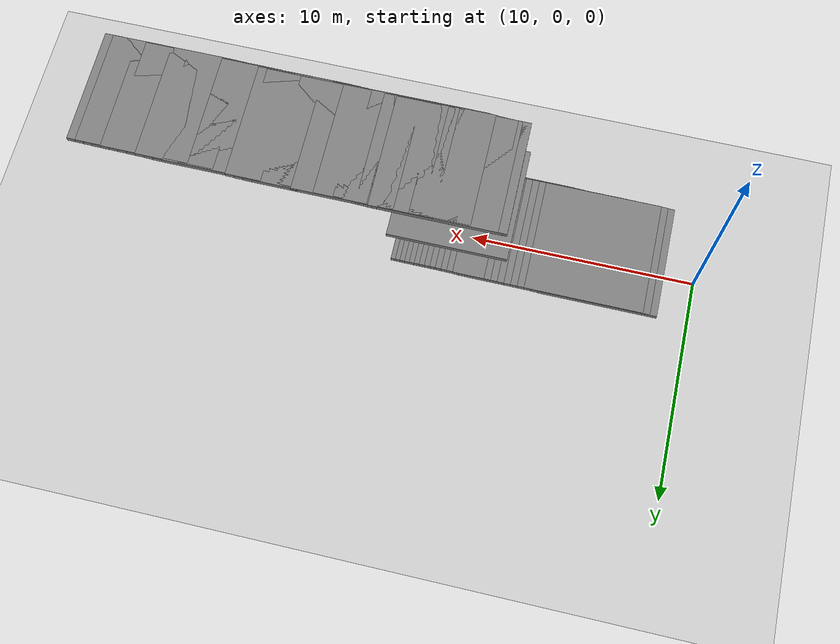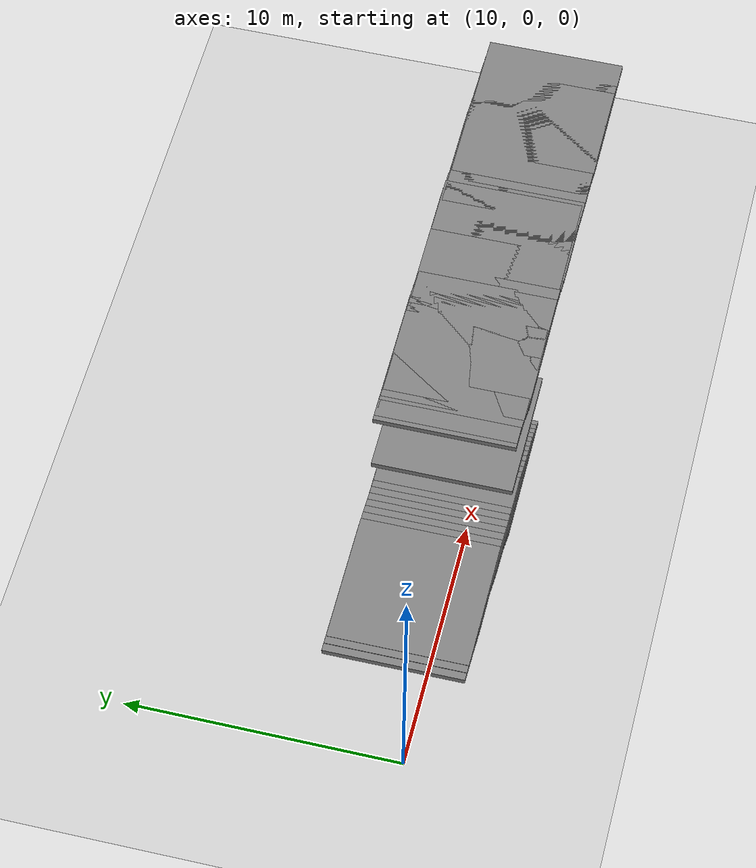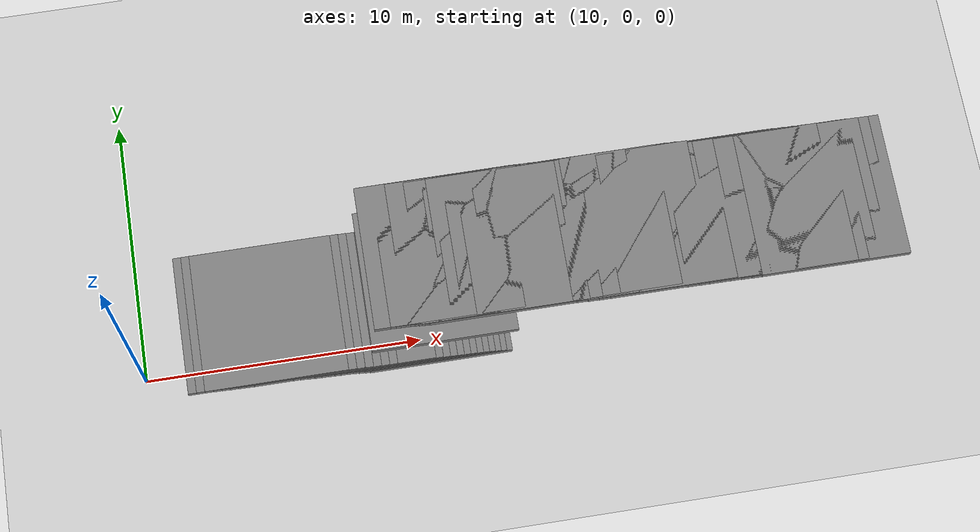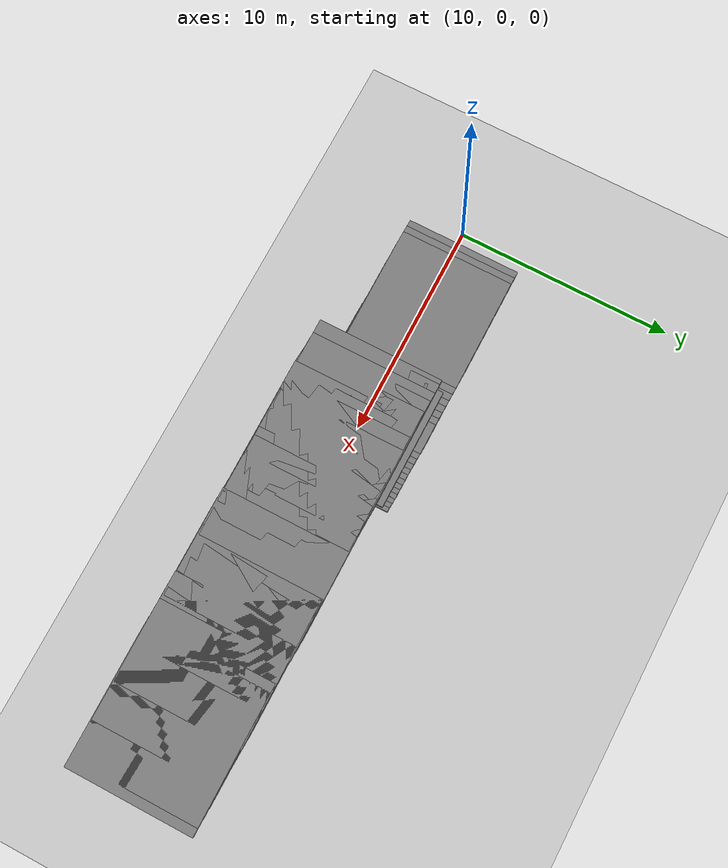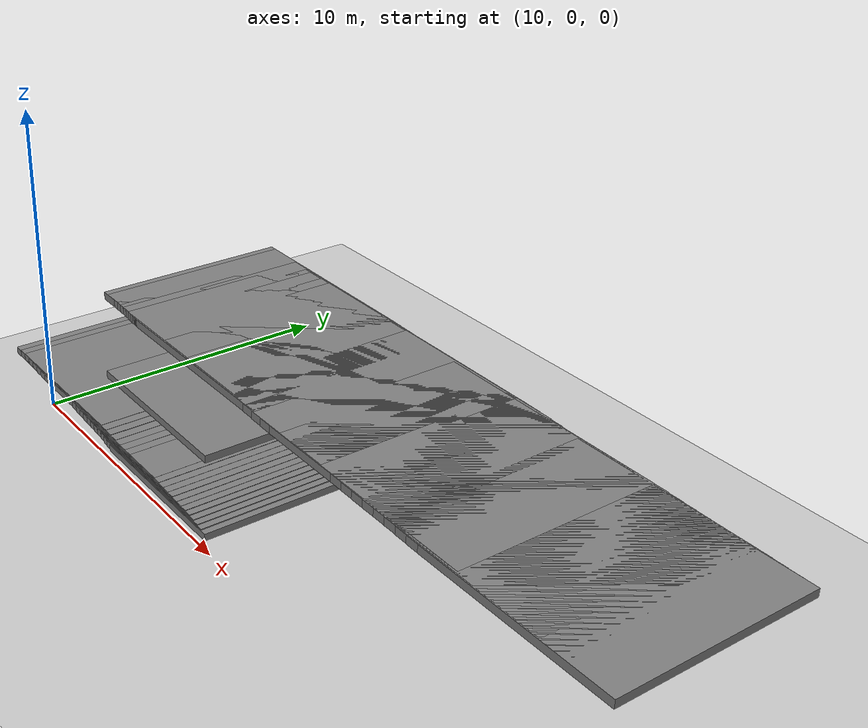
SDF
<sdf version="1.6">
 <world name="default">
  <include><uri>model://sun</uri></include>
  <include><uri>model://ground_plane</uri></include>
  <model name="road_segment_647">
   <static>true</static>
   <link name="link">
    <visual name="visual">
     <geometry><box><size>5.0 5.0 0.2</size></box></geometry>
     <material><ambient>0.5 0.5 0.5 1</ambient><diffuse>0.5 0.5 0.5 1</diffuse></material>
     <pose>33.78429300124273 0.5025741603383109 7.753381617790991 0 0 0</pose>
    </visual>
    <collision name="collision">
     <geometry><box><size>5.0 5.0 0.2</size></box></geometry>
     <pose>33.78429300124273 0.5025741603383109 7.753381617790991 0 0 0</pose>
    </collision>
   </link>
  </model>
  <model name="road_segment_648">
   <static>true</static>
   <link name="link">
    <visual name="visual">
     <geometry><box><size>5.0 5.0 0.2</size></box></geometry>
     <material><ambient>0.5 0.5 0.5 1</ambient><diffuse>0.5 0.5 0.5 1</diffuse></material>
     <pose>33.439639722446174 0.5058429353631491 7.753381617790991 0 0 0</pose>
    </visual>
    <collision name="collision">
     <geometry><box><size>5.0 5.0 0.2</size></box></geometry>
     <pose>33.439639722446174 0.5058429353631491 7.753381617790991 0 0 0</pose>
    </collision>
   </link>
  </model>
  <model name="road_segment_649">
   <static>true</static>
   <link name="link">
    <visual name="visual">
     <geometry><box><size>5.0 5.0 0.2</size></box></geometry>
     <material><ambient>0.5 0.5 0.5 1</ambient><diffuse>0.5 0.5 0.5 1</diffuse></material>
     <pose>33.09222921741963 0.5146277682444427 7.753381617790991 0 0 0</pose>
    </visual>
    <collision name="collision">
     <geometry><box><size>5.0 5.0 0.2</size></box></geometry>
     <pose>33.09222921741963 0.5146277682444427 7.753381617790991 0 0 0</pose>
    </collision>
   </link>
  </model>
  <model name="road_segment_650">
   <static>true</static>
   <link name="link">
    <visual name="visual">
     <geometry><box><size>5.0 5.0 0.2</size></box></geometry>
     <material><ambient>0.5 0.5 0.5 1</ambient><diffuse>0.5 0.5 0.5 1</diffuse></material>
     <pose>32.739648913191466 0.525046988643599 7.753381617790991 0 0 0</pose>
    </visual>
    <collision name="collision">
     <geometry><box><size>5.0 5.0 0.2</size></box></geometry>
     <pose>32.739648913191466 0.525046988643599 7.753381617790991 0 0 0</pose>
    </collision>
   </link>
  </model>
  <model name="road_segment_651">
   <static>true</static>
   <link name="link">
    <visual name="visual">
     <geometry><box><size>5.0 5.0 0.2</size></box></geometry>
     <material><ambient>0.5 0.5 0.5 1</ambient><diffuse>0.5 0.5 0.5 1</diffuse></material>
     <pose>32.38419649831388 0.5299501511826706 7.753381617790991 0 0 0</pose>
    </visual>
    <collision name="collision">
     <geometry><box><size>5.0 5.0 0.2</size></box></geometry>
     <pose>32.38419649831388 0.5299501511826706 7.753381617790991 0 0 0</pose>
    </collision>
   </link>
  </model>
  <model name="road_segment_652">
   <static>true</static>
   <link name="link">
    <visual name="visual">
     <geometry><box><size>5.0 5.0 0.2</size></box></geometry>
     <material><ambient>0.5 0.5 0.5 1</ambient><diffuse>0.5 0.5 0.5 1</diffuse></material>
     <pose>32.02610174164208 0.5307673449379728 7.753381617790991 0 0 0</pose>
    </visual>
    <collision name="collision">
     <geometry><box><size>5.0 5.0 0.2</size></box></geometry>
     <pose>32.02610174164208 0.5307673449379728 7.753381617790991 0 0 0</pose>
    </collision>
   </link>
  </model>
  <model name="road_segment_653">
   <static>true</static>
   <link name="link">
    <visual name="visual">
     <geometry><box><size>5.0 5.0 0.2</size></box></geometry>
     <material><ambient>0.5 0.5 0.5 1</ambient><diffuse>0.5 0.5 0.5 1</diffuse></material>
     <pose>31.66662837185529 0.5336275230869744 7.753381617790991 0 0 0</pose>
    </visual>
    <collision name="collision">
     <geometry><box><size>5.0 5.0 0.2</size></box></geometry>
     <pose>31.66662837185529 0.5336275230869744 7.753381617790991 0 0 0</pose>
    </collision>
   </link>
  </model>
  <model name="road_segment_654">
   <static>true</static>
   <link name="link">
    <visual name="visual">
     <geometry><box><size>5.0 5.0 0.2</size></box></geometry>
     <material><ambient>0.5 0.5 0.5 1</ambient><diffuse>0.5 0.5 0.5 1</diffuse></material>
     <pose>31.304972197968404 0.5397564762608139 7.753381617790991 0 0 0</pose>
    </visual>
    <collision name="collision">
     <geometry><box><size>5.0 5.0 0.2</size></box></geometry>
     <pose>31.304972197968404 0.5397564762608139 7.753381617790991 0 0 0</pose>
    </collision>
   </link>
  </model>
  <model name="road_segment_655">
   <static>true</static>
   <link name="link">
    <visual name="visual">
     <geometry><box><size>5.0 5.0 0.2</size></box></geometry>
     <material><ambient>0.5 0.5 0.5 1</ambient><diffuse>0.5 0.5 0.5 1</diffuse></material>
     <pose>30.939524838011216 0.5479284138283527 7.753381617790991 0 0 0</pose>
    </visual>
    <collision name="collision">
     <geometry><box><size>5.0 5.0 0.2</size></box></geometry>
     <pose>30.939524838011216 0.5479284138283527 7.753381617790991 0 0 0</pose>
    </collision>
   </link>
  </model>
  <model name="road_segment_656">
   <static>true</static>
   <link name="link">
    <visual name="visual">
     <geometry><box><size>5.0 5.0 0.2</size></box></geometry>
     <material><ambient>0.5 0.5 0.5 1</ambient><diffuse>0.5 0.5 0.5 1</diffuse></material>
     <pose>30.572928633794255 0.5597777233001952 7.753381617790991 0 0 0</pose>
    </visual>
    <collision name="collision">
     <geometry><box><size>5.0 5.0 0.2</size></box></geometry>
     <pose>30.572928633794255 0.5597777233001952 7.753381617790991 0 0 0</pose>
    </collision>
   </link>
  </model>
  <model name="road_segment_657">
   <static>true</static>
   <link name="link">
    <visual name="visual">
     <geometry><box><size>5.0 5.0 0.2</size></box></geometry>
     <material><ambient>0.5 0.5 0.5 1</ambient><diffuse>0.5 0.5 0.5 1</diffuse></material>
     <pose>30.205298469736974 0.5728528234068055 7.753381617790991 0 0 0</pose>
    </visual>
    <collision name="collision">
     <geometry><box><size>5.0 5.0 0.2</size></box></geometry>
     <pose>30.205298469736974 0.5728528234068055 7.753381617790991 0 0 0</pose>
    </collision>
   </link>
  </model>
  <model name="road_segment_658">
   <static>true</static>
   <link name="link">
    <visual name="visual">
     <geometry><box><size>5.0 5.0 0.2</size></box></geometry>
     <material><ambient>0.5 0.5 0.5 1</ambient><diffuse>0.5 0.5 0.5 1</diffuse></material>
     <pose>29.835140848304924 0.5777559859458772 7.753381617790991 0 0 0</pose>
    </visual>
    <collision name="collision">
     <geometry><box><size>5.0 5.0 0.2</size></box></geometry>
     <pose>29.835140848304924 0.5777559859458772 7.753381617790991 0 0 0</pose>
    </collision>
   </link>
  </model>
  <model name="road_segment_659">
   <static>true</static>
   <link name="link">
    <visual name="visual">
     <geometry><box><size>5.0 5.0 0.2</size></box></geometry>
     <material><ambient>0.5 0.5 0.5 1</ambient><diffuse>0.5 0.5 0.5 1</diffuse></material>
     <pose>29.46280042278911 0.5722399280894217 7.753381617790991 0 0 0</pose>
    </visual>
    <collision name="collision">
     <geometry><box><size>5.0 5.0 0.2</size></box></geometry>
     <pose>29.46280042278911 0.5722399280894217 7.753381617790991 0 0 0</pose>
    </collision>
   </link>
  </model>
  <model name="road_segment_660">
   <static>true</static>
   <link name="link">
    <visual name="visual">
     <geometry><box><size>5.0 5.0 0.2</size></box></geometry>
     <material><ambient>0.5 0.5 0.5 1</ambient><diffuse>0.5 0.5 0.5 1</diffuse></material>
     <pose>29.089196268561423 0.558960529544893 7.753381617790991 0 0 0</pose>
    </visual>
    <collision name="collision">
     <geometry><box><size>5.0 5.0 0.2</size></box></geometry>
     <pose>29.089196268561423 0.558960529544893 7.753381617790991 0 0 0</pose>
    </collision>
   </link>
  </model>
  <model name="road_segment_661">
   <static>true</static>
   <link name="link">
    <visual name="visual">
     <geometry><box><size>5.0 5.0 0.2</size></box></geometry>
     <material><ambient>0.5 0.5 0.5 1</ambient><diffuse>0.5 0.5 0.5 1</diffuse></material>
     <pose>28.714902807768084 0.5489499060252023 7.753381617790991 0 0 0</pose>
    </visual>
    <collision name="collision">
     <geometry><box><size>5.0 5.0 0.2</size></box></geometry>
     <pose>28.714902807768084 0.5489499060252023 7.753381617790991 0 0 0</pose>
    </collision>
   </link>
  </model>
  <model name="road_segment_662">
   <static>true</static>
   <link name="link">
    <visual name="visual">
     <geometry><box><size>5.0 5.0 0.2</size></box></geometry>
     <material><ambient>0.5 0.5 0.5 1</ambient><diffuse>0.5 0.5 0.5 1</diffuse></material>
     <pose>28.341873075686607 0.5516057857362855 7.753381617790991 0 0 0</pose>
    </visual>
    <collision name="collision">
     <geometry><box><size>5.0 5.0 0.2</size></box></geometry>
     <pose>28.341873075686607 0.5516057857362855 7.753381617790991 0 0 0</pose>
    </collision>
   </link>
  </model>
  <model name="road_segment_663">
   <static>true</static>
   <link name="link">
    <visual name="visual">
     <geometry><box><size>5.0 5.0 0.2</size></box></geometry>
     <material><ambient>0.5 0.5 0.5 1</ambient><diffuse>0.5 0.5 0.5 1</diffuse></material>
     <pose>27.970107072300678 0.5630464983286624 7.753381617790991 0 0 0</pose>
    </visual>
    <collision name="collision">
     <geometry><box><size>5.0 5.0 0.2</size></box></geometry>
     <pose>27.970107072300678 0.5630464983286624 7.753381617790991 0 0 0</pose>
    </collision>
   </link>
  </model>
  <model name="road_segment_664">
   <static>true</static>
   <link name="link">
    <visual name="visual">
     <geometry><box><size>5.0 5.0 0.2</size></box></geometry>
     <material><ambient>0.5 0.5 0.5 1</ambient><diffuse>0.5 0.5 0.5 1</diffuse></material>
     <pose>27.598570837753645 0.5793903734601109 7.753381617790991 0 0 0</pose>
    </visual>
    <collision name="collision">
     <geometry><box><size>5.0 5.0 0.2</size></box></geometry>
     <pose>27.598570837753645 0.5793903734601109 7.753381617790991 0 0 0</pose>
    </collision>
   </link>
  </model>
  <model name="road_segment_665">
   <static>true</static>
   <link name="link">
    <visual name="visual">
     <geometry><box><size>5.0 5.0 0.2</size></box></geometry>
     <material><ambient>0.5 0.5 0.5 1</ambient><diffuse>0.5 0.5 0.5 1</diffuse></material>
     <pose>27.22795367861116 0.5979815314231769 7.753381617790991 0 0 0</pose>
    </visual>
    <collision name="collision">
     <geometry><box><size>5.0 5.0 0.2</size></box></geometry>
     <pose>27.22795367861116 0.5979815314231769 7.753381617790991 0 0 0</pose>
    </collision>
   </link>
  </model>
  <model name="road_segment_666">
   <static>true</static>
   <link name="link">
    <visual name="visual">
     <geometry><box><size>5.0 5.0 0.2</size></box></geometry>
     <material><ambient>0.5 0.5 0.5 1</ambient><diffuse>0.5 0.5 0.5 1</diffuse></material>
     <pose>26.859863976843435 0.6143254065546253 7.753381617790991 0 0 0</pose>
    </visual>
    <collision name="collision">
     <geometry><box><size>5.0 5.0 0.2</size></box></geometry>
     <pose>26.859863976843435 0.6143254065546253 7.753381617790991 0 0 0</pose>
    </collision>
   </link>
  </model>
  <model name="road_segment_667">
   <static>true</static>
   <link name="link">
    <visual name="visual">
     <geometry><box><size>5.0 5.0 0.2</size></box></geometry>
     <material><ambient>0.5 0.5 0.5 1</ambient><diffuse>0.5 0.5 0.5 1</diffuse></material>
     <pose>26.494876154596685 0.6253575222711656 7.753381617790991 0 0 0</pose>
    </visual>
    <collision name="collision">
     <geometry><box><size>5.0 5.0 0.2</size></box></geometry>
     <pose>26.494876154596685 0.6253575222711656 7.753381617790991 0 0 0</pose>
    </collision>
   </link>
  </model>
  <model name="road_segment_668">
   <static>true</static>
   <link name="link">
    <visual name="visual">
     <geometry><box><size>5.0 5.0 0.2</size></box></geometry>
     <material><ambient>0.5 0.5 0.5 1</ambient><diffuse>0.5 0.5 0.5 1</diffuse></material>
     <pose>26.132990211854583 0.6302606848138662 7.753381617790991 0 0 0</pose>
    </visual>
    <collision name="collision">
     <geometry><box><size>5.0 5.0 0.2</size></box></geometry>
     <pose>26.132990211854583 0.6302606848138662 7.753381617790991 0 0 0</pose>
    </collision>
   </link>
  </model>
  <model name="road_segment_669">
   <static>true</static>
   <link name="link">
    <visual name="visual">
     <geometry><box><size>5.0 5.0 0.2</size></box></geometry>
     <material><ambient>0.5 0.5 0.5 1</ambient><diffuse>0.5 0.5 0.5 1</diffuse></material>
     <pose>25.77581453058734 0.6269919097853991 7.753381617790991 0 0 0</pose>
    </visual>
    <collision name="collision">
     <geometry><box><size>5.0 5.0 0.2</size></box></geometry>
     <pose>25.77581453058734 0.6269919097853991 7.753381617790991 0 0 0</pose>
    </collision>
   </link>
  </model>
  <model name="road_segment_670">
   <static>true</static>
   <link name="link">
    <visual name="visual">
     <geometry><box><size>5.0 5.0 0.2</size></box></geometry>
     <material><ambient>0.5 0.5 0.5 1</ambient><diffuse>0.5 0.5 0.5 1</diffuse></material>
     <pose>25.4321952116311 0.6233145378774663 7.753381617790991 0 0 0</pose>
    </visual>
    <collision name="collision">
     <geometry><box><size>5.0 5.0 0.2</size></box></geometry>
     <pose>25.4321952116311 0.6233145378774663 7.753381617790991 0 0 0</pose>
    </collision>
   </link>
  </model>
  <model name="road_segment_671">
   <static>true</static>
   <link name="link">
    <visual name="visual">
     <geometry><box><size>5.0 5.0 0.2</size></box></geometry>
     <material><ambient>0.5 0.5 0.5 1</ambient><diffuse>0.5 0.5 0.5 1</diffuse></material>
     <pose>25.114195119713468 0.6259704175885494 7.753381617790991 0 0 0</pose>
    </visual>
    <collision name="collision">
     <geometry><box><size>5.0 5.0 0.2</size></box></geometry>
     <pose>25.114195119713468 0.6259704175885494 7.753381617790991 0 0 0</pose>
    </collision>
   </link>
  </model>
  <model name="road_segment_672">
   <static>true</static>
   <link name="link">
    <visual name="visual">
     <geometry><box><size>5.0 5.0 0.2</size></box></geometry>
     <material><ambient>0.5 0.5 0.5 1</ambient><diffuse>0.5 0.5 0.5 1</diffuse></material>
     <pose>24.822044023705985 0.6294434910549349 7.753381617790991 0 0 0</pose>
    </visual>
    <collision name="collision">
     <geometry><box><size>5.0 5.0 0.2</size></box></geometry>
     <pose>24.822044023705985 0.6294434910549349 7.753381617790991 0 0 0</pose>
    </collision>
   </link>
  </model>
  <model name="road_segment_673">
   <static>true</static>
   <link name="link">
    <visual name="visual">
     <geometry><box><size>5.0 5.0 0.2</size></box></geometry>
     <material><ambient>0.5 0.5 0.5 1</ambient><diffuse>0.5 0.5 0.5 1</diffuse></material>
     <pose>24.551261431005344 0.6302606848102372 7.753381617790991 0 0 0</pose>
    </visual>
    <collision name="collision">
     <geometry><box><size>5.0 5.0 0.2</size></box></geometry>
     <pose>24.551261431005344 0.6302606848102372 7.753381617790991 0 0 0</pose>
    </collision>
   </link>
  </model>
  <model name="road_segment_674">
   <static>true</static>
   <link name="link">
    <visual name="visual">
     <geometry><box><size>5.0 5.0 0.2</size></box></geometry>
     <material><ambient>0.5 0.5 0.5 1</ambient><diffuse>0.5 0.5 0.5 1</diffuse></material>
     <pose>24.30058361289967 0.6314864754450051 7.753381617790991 0 0 0</pose>
    </visual>
    <collision name="collision">
     <geometry><box><size>5.0 5.0 0.2</size></box></geometry>
     <pose>24.30058361289967 0.6314864754450051 7.753381617790991 0 0 0</pose>
    </collision>
   </link>
  </model>
  <model name="road_segment_675">
   <static>true</static>
   <link name="link">
    <visual name="visual">
     <geometry><box><size>5.0 5.0 0.2</size></box></geometry>
     <material><ambient>0.5 0.5 0.5 1</ambient><diffuse>0.5 0.5 0.5 1</diffuse></material>
     <pose>24.067712880853097 0.628830595737551 7.753381617790991 0 0 0</pose>
    </visual>
    <collision name="collision">
     <geometry><box><size>5.0 5.0 0.2</size></box></geometry>
     <pose>24.067712880853097 0.628830595737551 7.753381617790991 0 0 0</pose>
    </collision>
   </link>
  </model>
  <model name="road_segment_676">
   <static>true</static>
   <link name="link">
    <visual name="visual">
     <geometry><box><size>5.0 5.0 0.2</size></box></geometry>
     <material><ambient>0.5 0.5 0.5 1</ambient><diffuse>0.5 0.5 0.5 1</diffuse></material>
     <pose>23.85230458160729 0.6227016425637114 7.753381617790991 0 0 0</pose>
    </visual>
    <collision name="collision">
     <geometry><box><size>5.0 5.0 0.2</size></box></geometry>
     <pose>23.85230458160729 0.6227016425637114 7.753381617790991 0 0 0</pose>
    </collision>
   </link>
  </model>
  <model name="road_segment_677">
   <static>true</static>
   <link name="link">
    <visual name="visual">
     <geometry><box><size>5.0 5.0 0.2</size></box></geometry>
     <material><ambient>0.5 0.5 0.5 1</ambient><diffuse>0.5 0.5 0.5 1</diffuse></material>
     <pose>23.655048021711572 0.619228569097326 7.753381617790991 0 0 0</pose>
    </visual>
    <collision name="collision">
     <geometry><box><size>5.0 5.0 0.2</size></box></geometry>
     <pose>23.655048021711572 0.619228569097326 7.753381617790991 0 0 0</pose>
    </collision>
   </link>
  </model>
  <model name="road_segment_678">
   <static>true</static>
   <link name="link">
    <visual name="visual">
     <geometry><box><size>5.0 5.0 0.2</size></box></geometry>
     <material><ambient>0.5 0.5 0.5 1</ambient><diffuse>0.5 0.5 0.5 1</diffuse></material>
     <pose>23.475598547874956 0.614121108120336 7.753381617790991 0 0 0</pose>
    </visual>
    <collision name="collision">
     <geometry><box><size>5.0 5.0 0.2</size></box></geometry>
     <pose>23.475598547874956 0.614121108120336 7.753381617790991 0 0 0</pose>
    </collision>
   </link>
  </model>
  <model name="road_segment_679">
   <static>true</static>
   <link name="link">
    <visual name="visual">
     <geometry><box><size>5.0 5.0 0.2</size></box></geometry>
     <material><ambient>0.5 0.5 0.5 1</ambient><diffuse>0.5 0.5 0.5 1</diffuse></material>
     <pose>23.31441569780788 0.6077878565049492 7.753381617790991 0 0 0</pose>
    </visual>
    <collision name="collision">
     <geometry><box><size>5.0 5.0 0.2</size></box></geometry>
     <pose>23.31441569780788 0.6077878565049492 7.753381617790991 0 0 0</pose>
    </collision>
   </link>
  </model>
  <model name="road_segment_680">
   <static>true</static>
   <link name="link">
    <visual name="visual">
     <geometry><box><size>5.0 5.0 0.2</size></box></geometry>
     <material><ambient>0.5 0.5 0.5 1</ambient><diffuse>0.5 0.5 0.5 1</diffuse></material>
     <pose>23.171729240381893 0.6028846939622484 7.753381617790991 0 0 0</pose>
    </visual>
    <collision name="collision">
     <geometry><box><size>5.0 5.0 0.2</size></box></geometry>
     <pose>23.171729240381893 0.6028846939622484 7.753381617790991 0 0 0</pose>
    </collision>
   </link>
  </model>
  <model name="road_segment_681">
   <static>true</static>
   <link name="link">
    <visual name="visual">
     <geometry><box><size>5.0 5.0 0.2</size></box></geometry>
     <material><ambient>0.5 0.5 0.5 1</ambient><diffuse>0.5 0.5 0.5 1</diffuse></material>
     <pose>23.046275446901447 0.5990030236200263 7.753381617790991 0 0 0</pose>
    </visual>
    <collision name="collision">
     <geometry><box><size>5.0 5.0 0.2</size></box></geometry>
     <pose>23.046275446901447 0.5990030236200263 7.753381617790991 0 0 0</pose>
    </collision>
   </link>
  </model>
  <model name="road_segment_682">
   <static>true</static>
   <link name="link">
    <visual name="visual">
     <geometry><box><size>5.0 5.0 0.2</size></box></geometry>
     <material><ambient>0.5 0.5 0.5 1</ambient><diffuse>0.5 0.5 0.5 1</diffuse></material>
     <pose>22.938513855060656 0.5957342485951884 7.753381617790991 0 0 0</pose>
    </visual>
    <collision name="collision">
     <geometry><box><size>5.0 5.0 0.2</size></box></geometry>
     <pose>22.938513855060656 0.5957342485951884 7.753381617790991 0 0 0</pose>
    </collision>
   </link>
  </model>
  <model name="road_segment_683">
   <static>true</static>
   <link name="link">
    <visual name="visual">
     <geometry><box><size>5.0 5.0 0.2</size></box></geometry>
     <material><ambient>0.5 0.5 0.5 1</ambient><diffuse>0.5 0.5 0.5 1</diffuse></material>
     <pose>22.849018887005734 0.5926697720046394 7.753381617790991 0 0 0</pose>
    </visual>
    <collision name="collision">
     <geometry><box><size>5.0 5.0 0.2</size></box></geometry>
     <pose>22.849018887005734 0.5926697720046394 7.753381617790991 0 0 0</pose>
    </collision>
   </link>
  </model>
  <model name="road_segment_684">
   <static>true</static>
   <link name="link">
    <visual name="visual">
     <geometry><box><size>5.0 5.0 0.2</size></box></geometry>
     <material><ambient>0.5 0.5 0.5 1</ambient><diffuse>0.5 0.5 0.5 1</diffuse></material>
     <pose>22.777101236171013 0.5883795047829519 7.753381617790991 0 0 0</pose>
    </visual>
    <collision name="collision">
     <geometry><box><size>5.0 5.0 0.2</size></box></geometry>
     <pose>22.777101236171013 0.5883795047829519 7.753381617790991 0 0 0</pose>
    </collision>
   </link>
  </model>
  <model name="road_segment_685">
   <static>true</static>
   <link name="link">
    <visual name="visual">
     <geometry><box><size>5.0 5.0 0.2</size></box></geometry>
     <material><ambient>0.5 0.5 0.5 1</ambient><diffuse>0.5 0.5 0.5 1</diffuse></material>
     <pose>22.724713937785054 0.5865408188307999 7.753381617790991 0 0 0</pose>
    </visual>
    <collision name="collision">
     <geometry><box><size>5.0 5.0 0.2</size></box></geometry>
     <pose>22.724713937785054 0.5865408188307999 7.753381617790991 0 0 0</pose>
    </collision>
   </link>
  </model>
  <model name="road_segment_686">
   <static>true</static>
   <link name="link">
    <visual name="visual">
     <geometry><box><size>5.0 5.0 0.2</size></box></geometry>
     <material><ambient>0.5 0.5 0.5 1</ambient><diffuse>0.5 0.5 0.5 1</diffuse></material>
     <pose>22.68519369514445 0.5885838032208701 7.753381617790991 0 0 0</pose>
    </visual>
    <collision name="collision">
     <geometry><box><size>5.0 5.0 0.2</size></box></geometry>
     <pose>22.68519369514445 0.5885838032208701 7.753381617790991 0 0 0</pose>
    </collision>
   </link>
  </model>
  <model name="road_segment_687">
   <static>true</static>
   <link name="link">
    <visual name="visual">
     <geometry><box><size>5.0 5.0 0.2</size></box></geometry>
     <material><ambient>0.5 0.5 0.5 1</ambient><diffuse>0.5 0.5 0.5 1</diffuse></material>
     <pose>22.637976195960114 0.5940998610809548 7.753381617790991 0 0 0</pose>
    </visual>
    <collision name="collision">
     <geometry><box><size>5.0 5.0 0.2</size></box></geometry>
     <pose>22.637976195960114 0.5940998610809548 7.753381617790991 0 0 0</pose>
    </collision>
   </link>
  </model>
  <model name="road_segment_688">
   <static>true</static>
   <link name="link">
    <visual name="visual">
     <geometry><box><size>5.0 5.0 0.2</size></box></geometry>
     <material><ambient>0.5 0.5 0.5 1</ambient><diffuse>0.5 0.5 0.5 1</diffuse></material>
     <pose>22.568586002500155 0.6010460080137257 7.753381617790991 0 0 0</pose>
    </visual>
    <collision name="collision">
     <geometry><box><size>5.0 5.0 0.2</size></box></geometry>
     <pose>22.568586002500155 0.6010460080137257 7.753381617790991 0 0 0</pose>
    </collision>
   </link>
  </model>
  <model name="road_segment_689">
   <static>true</static>
   <link name="link">
    <visual name="visual">
     <geometry><box><size>5.0 5.0 0.2</size></box></geometry>
     <material><ambient>0.5 0.5 0.5 1</ambient><diffuse>0.5 0.5 0.5 1</diffuse></material>
     <pose>22.47805707458858 0.603906186159098 7.753381617790991 0 0 0</pose>
    </visual>
    <collision name="collision">
     <geometry><box><size>5.0 5.0 0.2</size></box></geometry>
     <pose>22.47805707458858 0.603906186159098 7.753381617790991 0 0 0</pose>
    </collision>
   </link>
  </model>
  <model name="road_segment_690">
   <static>true</static>
   <link name="link">
    <visual name="visual">
     <geometry><box><size>5.0 5.0 0.2</size></box></geometry>
     <material><ambient>0.5 0.5 0.5 1</ambient><diffuse>0.5 0.5 0.5 1</diffuse></material>
     <pose>22.367423372082037 0.6092179455776353 7.753381617790991 0 0 0</pose>
    </visual>
    <collision name="collision">
     <geometry><box><size>5.0 5.0 0.2</size></box></geometry>
     <pose>22.367423372082037 0.6092179455776353 7.753381617790991 0 0 0</pose>
    </collision>
   </link>
  </model>
  <model name="road_segment_691">
   <static>true</static>
   <link name="link">
    <visual name="visual">
     <geometry><box><size>5.0 5.0 0.2</size></box></geometry>
     <material><ambient>0.5 0.5 0.5 1</ambient><diffuse>0.5 0.5 0.5 1</diffuse></material>
     <pose>22.23817839253128 0.6220887472463275 7.753381617790991 0 0 0</pose>
    </visual>
    <collision name="collision">
     <geometry><box><size>5.0 5.0 0.2</size></box></geometry>
     <pose>22.23817839253128 0.6220887472463275 7.753381617790991 0 0 0</pose>
    </collision>
   </link>
  </model>
  <model name="road_segment_692">
   <static>true</static>
   <link name="link">
    <visual name="visual">
     <geometry><box><size>5.0 5.0 0.2</size></box></geometry>
     <material><ambient>0.5 0.5 0.5 1</ambient><diffuse>0.5 0.5 0.5 1</diffuse></material>
     <pose>22.096640779381392 0.6347552504734721 7.753381617790991 0 0 0</pose>
    </visual>
    <collision name="collision">
     <geometry><box><size>5.0 5.0 0.2</size></box></geometry>
     <pose>22.096640779381392 0.6347552504734721 7.753381617790991 0 0 0</pose>
    </collision>
   </link>
  </model>
  <model name="road_segment_693">
   <static>true</static>
   <link name="link">
    <visual name="visual">
     <geometry><box><size>5.0 5.0 0.2</size></box></geometry>
     <material><ambient>0.5 0.5 0.5 1</ambient><diffuse>0.5 0.5 0.5 1</diffuse></material>
     <pose>21.946946371961005 0.6406799052093934 7.753381617790991 0 0 0</pose>
    </visual>
    <collision name="collision">
     <geometry><box><size>5.0 5.0 0.2</size></box></geometry>
     <pose>21.946946371961005 0.6406799052093934 7.753381617790991 0 0 0</pose>
    </collision>
   </link>
  </model>
  <model name="road_segment_694">
   <static>true</static>
   <link name="link">
    <visual name="visual">
     <geometry><box><size>5.0 5.0 0.2</size></box></geometry>
     <material><ambient>0.5 0.5 0.5 1</ambient><diffuse>0.5 0.5 0.5 1</diffuse></material>
     <pose>21.787831441574582 0.642314292723627 7.753381617790991 0 0 0</pose>
    </visual>
    <collision name="collision">
     <geometry><box><size>5.0 5.0 0.2</size></box></geometry>
     <pose>21.787831441574582 0.642314292723627 7.753381617790991 0 0 0</pose>
    </collision>
   </link>
  </model>
  <model name="road_segment_695">
   <static>true</static>
   <link name="link">
    <visual name="visual">
     <geometry><box><size>5.0 5.0 0.2</size></box></geometry>
     <material><ambient>0.5 0.5 0.5 1</ambient><diffuse>0.5 0.5 0.5 1</diffuse></material>
     <pose>21.620674601353432 0.6476260521421643 7.753381617790991 0 0 0</pose>
    </visual>
    <collision name="collision">
     <geometry><box><size>5.0 5.0 0.2</size></box></geometry>
     <pose>21.620674601353432 0.6476260521421643 7.753381617790991 0 0 0</pose>
    </collision>
   </link>
  </model>
  <model name="road_segment_696">
   <static>true</static>
   <link name="link">
    <visual name="visual">
     <geometry><box><size>5.0 5.0 0.2</size></box></geometry>
     <material><ambient>0.5 0.5 0.5 1</ambient><diffuse>0.5 0.5 0.5 1</diffuse></material>
     <pose>21.448003308672323 0.654572199071306 7.753381617790991 0 0 0</pose>
    </visual>
    <collision name="collision">
     <geometry><box><size>5.0 5.0 0.2</size></box></geometry>
     <pose>21.448003308672323 0.654572199071306 7.753381617790991 0 0 0</pose>
    </collision>
   </link>
  </model>
  <model name="road_segment_697">
   <static>true</static>
   <link name="link">
    <visual name="visual">
     <geometry><box><size>5.0 5.0 0.2</size></box></geometry>
     <material><ambient>0.5 0.5 0.5 1</ambient><diffuse>0.5 0.5 0.5 1</diffuse></material>
     <pose>21.26981756353125 0.6572280787787602 7.753381617790991 0 0 0</pose>
    </visual>
    <collision name="collision">
     <geometry><box><size>5.0 5.0 0.2</size></box></geometry>
     <pose>21.26981756353125 0.6572280787787602 7.753381617790991 0 0 0</pose>
    </collision>
   </link>
  </model>
  <model name="road_segment_698">
   <static>true</static>
   <link name="link">
    <visual name="visual">
     <geometry><box><size>5.0 5.0 0.2</size></box></geometry>
     <material><ambient>0.5 0.5 0.5 1</ambient><diffuse>0.5 0.5 0.5 1</diffuse></material>
     <pose>21.090827627405076 0.6576366756582259 7.753381617790991 0 0 0</pose>
    </visual>
    <collision name="collision">
     <geometry><box><size>5.0 5.0 0.2</size></box></geometry>
     <pose>21.090827627405076 0.6576366756582259 7.753381617790991 0 0 0</pose>
    </collision>
   </link>
  </model>
  <model name="road_segment_699">
   <static>true</static>
   <link name="link">
    <visual name="visual">
     <geometry><box><size>5.0 5.0 0.2</size></box></geometry>
     <material><ambient>0.5 0.5 0.5 1</ambient><diffuse>0.5 0.5 0.5 1</diffuse></material>
     <pose>20.910459078163907 0.6547764975092244 7.753381617790991 0 0 0</pose>
    </visual>
    <collision name="collision">
     <geometry><box><size>5.0 5.0 0.2</size></box></geometry>
     <pose>20.910459078163907 0.6547764975092244 7.753381617790991 0 0 0</pose>
    </collision>
   </link>
  </model>
  <model name="road_segment_700">
   <static>true</static>
   <link name="link">
    <visual name="visual">
     <geometry><box><size>5.0 5.0 0.2</size></box></geometry>
     <material><ambient>0.5 0.5 0.5 1</ambient><diffuse>0.5 0.5 0.5 1</diffuse></material>
     <pose>20.724461192043336 0.6551850943886901 5.419084118891451 0 0 0</pose>
    </visual>
    <collision name="collision">
     <geometry><box><size>5.0 5.0 0.2</size></box></geometry>
     <pose>20.724461192043336 0.6551850943886901 5.419084118891451 0 0 0</pose>
    </collision>
   </link>
  </model>
  <model name="road_segment_701">
   <static>true</static>
   <link name="link">
    <visual name="visual">
     <geometry><box><size>5.0 5.0 0.2</size></box></geometry>
     <material><ambient>0.5 0.5 0.5 1</ambient><diffuse>0.5 0.5 0.5 1</diffuse></material>
     <pose>20.535131657562893 0.6649914194704624 3.0959551747471425 0 0 0</pose>
    </visual>
    <collision name="collision">
     <geometry><box><size>5.0 5.0 0.2</size></box></geometry>
     <pose>20.535131657562893 0.6649914194704624 3.0959551747471425 0 0 0</pose>
    </collision>
   </link>
  </model>
  <model name="road_segment_702">
   <static>true</static>
   <link name="link">
    <visual name="visual">
     <geometry><box><size>5.0 5.0 0.2</size></box></geometry>
     <material><ambient>0.5 0.5 0.5 1</ambient><diffuse>0.5 0.5 0.5 1</diffuse></material>
     <pose>20.341666283721157 0.6774536242560598 3.1227338714244977 0 0 0</pose>
    </visual>
    <collision name="collision">
     <geometry><box><size>5.0 5.0 0.2</size></box></geometry>
     <pose>20.341666283721157 0.6774536242560598 3.1227338714244977 0 0 0</pose>
    </collision>
   </link>
  </model>
  <model name="road_segment_703">
   <static>true</static>
   <link name="link">
    <visual name="visual">
     <geometry><box><size>5.0 5.0 0.2</size></box></geometry>
     <material><ambient>0.5 0.5 0.5 1</ambient><diffuse>0.5 0.5 0.5 1</diffuse></material>
     <pose>20.14406507053445 0.6893029337279022 3.143958100034082 0 0 0</pose>
    </visual>
    <collision name="collision">
     <geometry><box><size>5.0 5.0 0.2</size></box></geometry>
     <pose>20.14406507053445 0.6893029337279022 3.143958100034082 0 0 0</pose>
    </collision>
   </link>
  </model>
  <model name="road_segment_704">
   <static>true</static>
   <link name="link">
    <visual name="visual">
     <geometry><box><size>5.0 5.0 0.2</size></box></geometry>
     <material><ambient>0.5 0.5 0.5 1</ambient><diffuse>0.5 0.5 0.5 1</diffuse></material>
     <pose>19.942328018019097 0.7009479447618264 3.1634831979825058 0 0 0</pose>
    </visual>
    <collision name="collision">
     <geometry><box><size>5.0 5.0 0.2</size></box></geometry>
     <pose>19.942328018019097 0.7009479447618264 3.1634831979825058 0 0 0</pose>
    </collision>
   </link>
  </model>
  <model name="road_segment_705">
   <static>true</static>
   <link name="link">
    <visual name="visual">
     <geometry><box><size>5.0 5.0 0.2</size></box></geometry>
     <material><ambient>0.5 0.5 0.5 1</ambient><diffuse>0.5 0.5 0.5 1</diffuse></material>
     <pose>19.736914663852886 0.7062597041803638 3.1860786548449567 0 0 0</pose>
    </visual>
    <collision name="collision">
     <geometry><box><size>5.0 5.0 0.2</size></box></geometry>
     <pose>19.736914663852886 0.7062597041803638 3.1860786548449567 0 0 0</pose>
    </collision>
   </link>
  </model>
  <model name="road_segment_706">
   <static>true</static>
   <link name="link">
    <visual name="visual">
     <geometry><box><size>5.0 5.0 0.2</size></box></geometry>
     <material><ambient>0.5 0.5 0.5 1</ambient><diffuse>0.5 0.5 0.5 1</diffuse></material>
     <pose>19.525757088371492 0.7078940916945974 3.200983309767418 0 0 0</pose>
    </visual>
    <collision name="collision">
     <geometry><box><size>5.0 5.0 0.2</size></box></geometry>
     <pose>19.525757088371492 0.7078940916945974 3.200983309767418 0 0 0</pose>
    </collision>
   </link>
  </model>
  <model name="road_segment_707">
   <static>true</static>
   <link name="link">
    <visual name="visual">
     <geometry><box><size>5.0 5.0 0.2</size></box></geometry>
     <material><ambient>0.5 0.5 0.5 1</ambient><diffuse>0.5 0.5 0.5 1</diffuse></material>
     <pose>19.307591562895702 0.7123886573542033 3.2075413579333008 0 0 0</pose>
    </visual>
    <collision name="collision">
     <geometry><box><size>5.0 5.0 0.2</size></box></geometry>
     <pose>19.307591562895702 0.7123886573542033 3.2075413579333008 0 0 0</pose>
    </collision>
   </link>
  </model>
  <model name="road_segment_708">
   <static>true</static>
   <link name="link">
    <visual name="visual">
     <geometry><box><size>5.0 5.0 0.2</size></box></geometry>
     <material><ambient>0.5 0.5 0.5 1</ambient><diffuse>0.5 0.5 0.5 1</diffuse></material>
     <pose>19.08414135379884 0.7152488354995756 3.2177361419002644 0 0 0</pose>
    </visual>
    <collision name="collision">
     <geometry><box><size>5.0 5.0 0.2</size></box></geometry>
     <pose>19.08414135379884 0.7152488354995756 3.2177361419002644 0 0 0</pose>
    </collision>
   </link>
  </model>
  <model name="road_segment_709">
   <static>true</static>
   <link name="link">
    <visual name="visual">
     <geometry><box><size>5.0 5.0 0.2</size></box></geometry>
     <material><ambient>0.5 0.5 0.5 1</ambient><diffuse>0.5 0.5 0.5 1</diffuse></material>
     <pose>18.853453425852365 0.7179047152106589 3.231050966964329 0 0 0</pose>
    </visual>
    <collision name="collision">
     <geometry><box><size>5.0 5.0 0.2</size></box></geometry>
     <pose>18.853453425852365 0.7179047152106589 3.231050966964329 0 0 0</pose>
    </collision>
   </link>
  </model>
  <model name="road_segment_710">
   <static>true</static>
   <link name="link">
    <visual name="visual">
     <geometry><box><size>5.0 5.0 0.2</size></box></geometry>
     <material><ambient>0.5 0.5 0.5 1</ambient><diffuse>0.5 0.5 0.5 1</diffuse></material>
     <pose>18.616446854477147 0.725055160581348 3.235581982060757 0 0 0</pose>
    </visual>
    <collision name="collision">
     <geometry><box><size>5.0 5.0 0.2</size></box></geometry>
     <pose>18.616446854477147 0.725055160581348 3.235581982060757 0 0 0</pose>
    </collision>
   </link>
  </model>
  <model name="road_segment_711">
   <static>true</static>
   <link name="link">
    <visual name="visual">
     <geometry><box><size>5.0 5.0 0.2</size></box></geometry>
     <material><ambient>0.5 0.5 0.5 1</ambient><diffuse>0.5 0.5 0.5 1</diffuse></material>
     <pose>18.372776986365874 0.7350657840974095 3.2392783364815276 0 0 0</pose>
    </visual>
    <collision name="collision">
     <geometry><box><size>5.0 5.0 0.2</size></box></geometry>
     <pose>18.372776986365874 0.7350657840974095 3.2392783364815276 0 0 0</pose>
    </collision>
   </link>
  </model>
  <model name="road_segment_712">
   <static>true</static>
   <link name="link">
    <visual name="visual">
     <geometry><box><size>5.0 5.0 0.2</size></box></geometry>
     <material><ambient>0.5 0.5 0.5 1</ambient><diffuse>0.5 0.5 0.5 1</diffuse></material>
     <pose>18.1231331280842 0.7465064966934155 3.2494035653921864 0 0 0</pose>
    </visual>
    <collision name="collision">
     <geometry><box><size>5.0 5.0 0.2</size></box></geometry>
     <pose>18.1231331280842 0.7465064966934155 3.2494035653921864 0 0 0</pose>
    </collision>
   </link>
  </model>
  <model name="road_segment_713">
   <static>true</static>
   <link name="link">
    <visual name="visual">
     <geometry><box><size>5.0 5.0 0.2</size></box></geometry>
     <material><ambient>0.5 0.5 0.5 1</ambient><diffuse>0.5 0.5 0.5 1</diffuse></material>
     <pose>17.86831947061723 0.7579472092857924 3.2503375904339937 0 0 0</pose>
    </visual>
    <collision name="collision">
     <geometry><box><size>5.0 5.0 0.2</size></box></geometry>
     <pose>17.86831947061723 0.7579472092857924 3.2503375904339937 0 0 0</pose>
    </collision>
   </link>
  </model>
  <model name="road_segment_714">
   <static>true</static>
   <link name="link">
    <visual name="visual">
     <geometry><box><size>5.0 5.0 0.2</size></box></geometry>
     <material><ambient>0.5 0.5 0.5 1</ambient><diffuse>0.5 0.5 0.5 1</diffuse></material>
     <pose>17.609140204950066 0.7657105499738655 3.2451010883379023 0 0 0</pose>
    </visual>
    <collision name="collision">
     <geometry><box><size>5.0 5.0 0.2</size></box></geometry>
     <pose>17.609140204950066 0.7657105499738655 3.2451010883379023 0 0 0</pose>
    </collision>
   </link>
  </model>
  <model name="road_segment_715">
   <static>true</static>
   <link name="link">
    <visual name="visual">
     <geometry><box><size>5.0 5.0 0.2</size></box></geometry>
     <material><ambient>0.5 0.5 0.5 1</ambient><diffuse>0.5 0.5 0.5 1</diffuse></material>
     <pose>17.346973944214035 0.7704094140750188 3.2477441804774854 0 0 0</pose>
    </visual>
    <collision name="collision">
     <geometry><box><size>5.0 5.0 0.2</size></box></geometry>
     <pose>17.346973944214035 0.7704094140750188 3.2477441804774854 0 0 0</pose>
    </collision>
   </link>
  </model>
  <model name="road_segment_716">
   <static>true</static>
   <link name="link">
    <visual name="visual">
     <geometry><box><size>5.0 5.0 0.2</size></box></geometry>
     <material><ambient>0.5 0.5 0.5 1</ambient><diffuse>0.5 0.5 0.5 1</diffuse></material>
     <pose>17.07952299987326 0.7693879218781692 3.24601524050648 0 0 0</pose>
    </visual>
    <collision name="collision">
     <geometry><box><size>5.0 5.0 0.2</size></box></geometry>
     <pose>17.07952299987326 0.7693879218781692 3.24601524050648 0 0 0</pose>
    </collision>
   </link>
  </model>
  <model name="road_segment_717">
   <static>true</static>
   <link name="link">
    <visual name="visual">
     <geometry><box><size>5.0 5.0 0.2</size></box></geometry>
     <material><ambient>0.5 0.5 0.5 1</ambient><diffuse>0.5 0.5 0.5 1</diffuse></material>
     <pose>16.805064105521758 0.7634632671422479 3.2466312995766087 0 0 0</pose>
    </visual>
    <collision name="collision">
     <geometry><box><size>5.0 5.0 0.2</size></box></geometry>
     <pose>16.805064105521758 0.7634632671422479 3.2466312995766087 0 0 0</pose>
    </collision>
   </link>
  </model>
  <model name="road_segment_718">
   <static>true</static>
   <link name="link">
    <visual name="visual">
     <geometry><box><size>5.0 5.0 0.2</size></box></geometry>
     <material><ambient>0.5 0.5 0.5 1</ambient><diffuse>0.5 0.5 0.5 1</diffuse></material>
     <pose>16.52796286935972 0.7603987905553282 3.250625747095828 0 0 0</pose>
    </visual>
    <collision name="collision">
     <geometry><box><size>5.0 5.0 0.2</size></box></geometry>
     <pose>16.52796286935972 0.7603987905553282 3.250625747095828 0 0 0</pose>
    </collision>
   </link>
  </model>
  <model name="road_segment_719">
   <static>true</static>
   <link name="link">
    <visual name="visual">
     <geometry><box><size>5.0 5.0 0.2</size></box></geometry>
     <material><ambient>0.5 0.5 0.5 1</ambient><diffuse>0.5 0.5 0.5 1</diffuse></material>
     <pose>16.24867882909759 0.7628503718284931 3.2539246440519993 0 0 0</pose>
    </visual>
    <collision name="collision">
     <geometry><box><size>5.0 5.0 0.2</size></box></geometry>
     <pose>16.24867882909759 0.7628503718284931 3.2539246440519993 0 0 0</pose>
    </collision>
   </link>
  </model>
  <model name="road_segment_720">
   <static>true</static>
   <link name="link">
    <visual name="visual">
     <geometry><box><size>5.0 5.0 0.2</size></box></geometry>
     <material><ambient>0.5 0.5 0.5 1</ambient><diffuse>0.5 0.5 0.5 1</diffuse></material>
     <pose>15.966867331460698 0.7687750265644143 3.255772821262384 0 0 0</pose>
    </visual>
    <collision name="collision">
     <geometry><box><size>5.0 5.0 0.2</size></box></geometry>
     <pose>15.966867331460698 0.7687750265644143 3.255772821262384 0 0 0</pose>
    </collision>
   </link>
  </model>
  <model name="road_segment_721">
   <static>true</static>
   <link name="link">
    <visual name="visual">
     <geometry><box><size>5.0 5.0 0.2</size></box></geometry>
     <material><ambient>0.5 0.5 0.5 1</ambient><diffuse>0.5 0.5 0.5 1</diffuse></material>
     <pose>15.683792105144589 0.7744953828587882 3.262768072639326 0 0 0</pose>
    </visual>
    <collision name="collision">
     <geometry><box><size>5.0 5.0 0.2</size></box></geometry>
     <pose>15.683792105144589 0.7744953828587882 3.262768072639326 0 0 0</pose>
    </collision>
   </link>
  </model>
  <model name="road_segment_722">
   <static>true</static>
   <link name="link">
    <visual name="visual">
     <geometry><box><size>5.0 5.0 0.2</size></box></geometry>
     <material><ambient>0.5 0.5 0.5 1</ambient><diffuse>0.5 0.5 0.5 1</diffuse></material>
     <pose>15.39727034603284 0.7802157391531621 3.27667908390029 0 0 0</pose>
    </visual>
    <collision name="collision">
     <geometry><box><size>5.0 5.0 0.2</size></box></geometry>
     <pose>15.39727034603284 0.7802157391531621 3.27667908390029 0 0 0</pose>
    </collision>
   </link>
  </model>
  <model name="road_segment_723">
   <static>true</static>
   <link name="link">
    <visual name="visual">
     <geometry><box><size>5.0 5.0 0.2</size></box></geometry>
     <material><ambient>0.5 0.5 0.5 1</ambient><diffuse>0.5 0.5 0.5 1</diffuse></material>
     <pose>15.108221129546333 0.7861403938890832 3.283873064009531 0 0 0</pose>
    </visual>
    <collision name="collision">
     <geometry><box><size>5.0 5.0 0.2</size></box></geometry>
     <pose>15.108221129546333 0.7861403938890832 3.283873064009531 0 0 0</pose>
    </collision>
   </link>
  </model>
  <model name="road_segment_724">
   <static>true</static>
   <link name="link">
    <visual name="visual">
     <geometry><box><size>5.0 5.0 0.2</size></box></geometry>
     <material><ambient>0.5 0.5 0.5 1</ambient><diffuse>0.5 0.5 0.5 1</diffuse></material>
     <pose>14.818942144204605 0.7918607501870862 3.2909776161892372 0 0 0</pose>
    </visual>
    <collision name="collision">
     <geometry><box><size>5.0 5.0 0.2</size></box></geometry>
     <pose>14.818942144204605 0.7918607501870862 3.2909776161892372 0 0 0</pose>
    </collision>
   </link>
  </model>
  <model name="road_segment_725">
   <static>true</static>
   <link name="link">
    <visual name="visual">
     <geometry><box><size>5.0 5.0 0.2</size></box></geometry>
     <material><ambient>0.5 0.5 0.5 1</ambient><diffuse>0.5 0.5 0.5 1</diffuse></material>
     <pose>14.529433390007656 0.7975811064850893 3.281855967376691 0 0 0</pose>
    </visual>
    <collision name="collision">
     <geometry><box><size>5.0 5.0 0.2</size></box></geometry>
     <pose>14.529433390007656 0.7975811064850893 3.281855967376691 0 0 0</pose>
    </collision>
   </link>
  </model>
  <model name="road_segment_726">
   <static>true</static>
   <link name="link">
    <visual name="visual">
     <geometry><box><size>5.0 5.0 0.2</size></box></geometry>
     <material><ambient>0.5 0.5 0.5 1</ambient><diffuse>0.5 0.5 0.5 1</diffuse></material>
     <pose>14.239005560406156 0.8030971643415448 3.260621802330492 0 0 0</pose>
    </visual>
    <collision name="collision">
     <geometry><box><size>5.0 5.0 0.2</size></box></geometry>
     <pose>14.239005560406156 0.8030971643415448 3.260621802330492 0 0 0</pose>
    </collision>
   </link>
  </model>
 </world>
</sdf>
